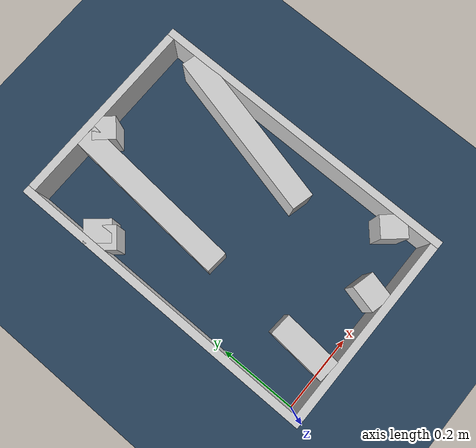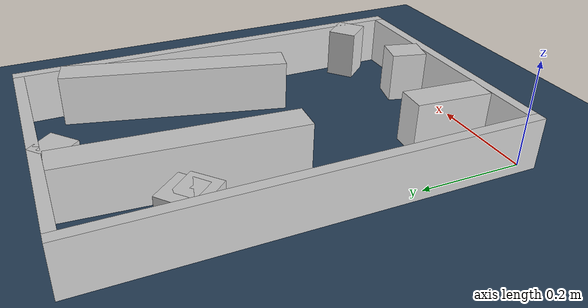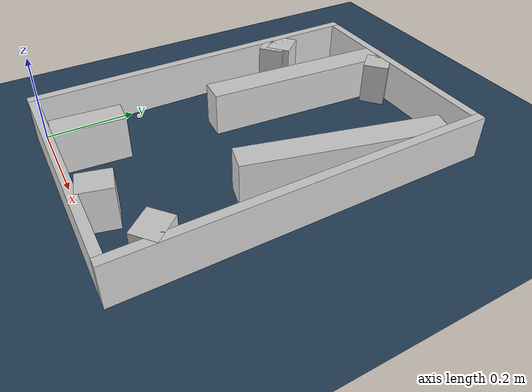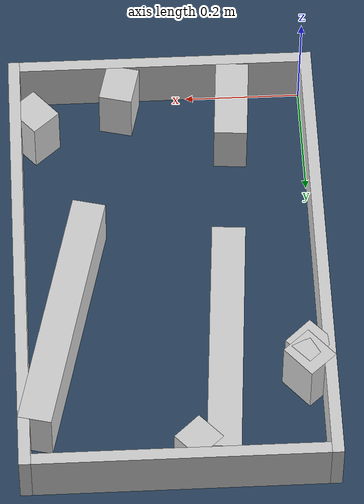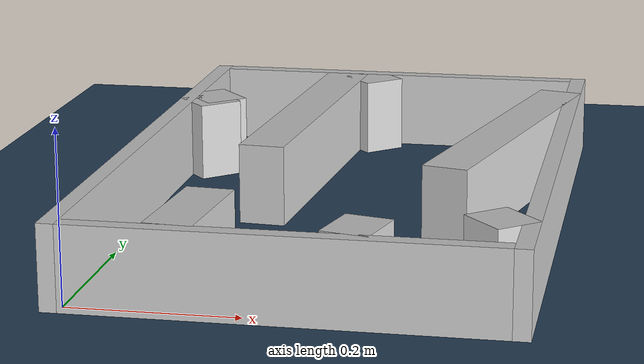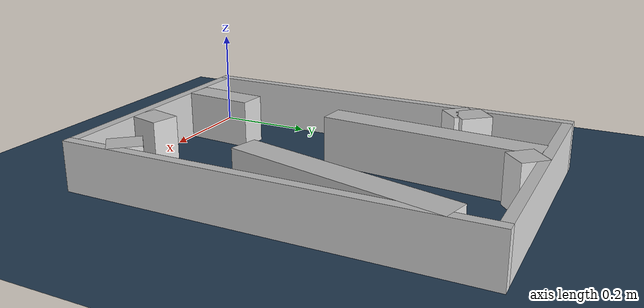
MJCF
<?xml version="1.0" ?>
<mujoco model="generated_real_template">
  <compiler angle="degree"/>
  <option timestep="0.002" integrator="implicitfast" iterations="100" cone="elliptic"/>
  <default>
    <geom density="1"/>
  </default>
  <asset>
    <texture builtin="gradient" height="3072" rgb1="0.3 0.5 0.7" rgb2="0 0 0" type="skybox" width="512"/>
    <texture builtin="checker" height="300" mark="edge" markrgb="0.8 0.8 0.8" name="groundplane" rgb1="0.2 0.3 0.4" rgb2="0.1 0.2 0.3" type="2d" width="300"/>
    <material name="groundplane" reflectance="0.2" texrepeat="5 5" texture="groundplane" texuniform="true"/>
  </asset>
  <worldbody>
    <light dir="0 0 -1" directional="true" pos="0 0 1.5"/>
    <geom name="floor" type="plane" condim="4" friction="0.5 0.005 0.001" material="groundplane" size="0 0 0.05"/>
    <body name="walls">
      <geom name="wall_boundary_left" type="box" condim="4" friction="1.0 0.005 0.0001" rgba="0.8 0.8 0.8 1" pos="-0.010000 0.387500 0.050000" euler="0 0 0.000000" size="0.010000 0.407500 0.050000"/>
      <geom name="wall_boundary_right" type="box" condim="4" friction="1.0 0.005 0.0001" rgba="0.8 0.8 0.8 1" pos="0.500000 0.387500 0.050000" euler="0 0 0.000000" size="0.010000 0.407500 0.050000"/>
      <geom name="wall_boundary_bottom" type="box" condim="4" friction="1.0 0.005 0.0001" rgba="0.8 0.8 0.8 1" pos="0.245000 -0.010000 0.050000" euler="0 0 0.000000" size="0.245000 0.010000 0.050000"/>
      <geom name="wall_boundary_top" type="box" condim="4" friction="1.0 0.005 0.0001" rgba="0.8 0.8 0.8 1" pos="0.245000 0.785000 0.050000" euler="0 0 0.000000" size="0.245000 0.010000 0.050000"/>
      <geom name="wall_inner_1_1" type="box" condim="4" friction="1.0 0.005 0.0001" rgba="0.8 0.8 0.8 1" pos="0.467164 0.087561 0.050000" euler="0 0 130.845393" size="0.032530 0.028500 0.050000"/>
      <geom name="wall_inner_1_2" type="box" condim="4" friction="1.0 0.005 0.0001" rgba="0.8 0.8 0.8 1" pos="0.023220 0.601052 0.050000" euler="0 0 130.845393" size="0.033117 0.028500 0.050000"/>
      <geom name="wall_inner_2_1" type="box" condim="4" friction="1.0 0.005 0.0001" rgba="0.8 0.8 0.8 1" pos="0.317705 0.034082 0.050000" euler="0 0 76.326978" size="0.035076 0.028500 0.050000"/>
      <geom name="wall_inner_2_2" type="box" condim="4" friction="1.0 0.005 0.0001" rgba="0.8 0.8 0.8 1" pos="0.430295 0.496893 0.050000" euler="0 0 76.326978" size="0.220033 0.028500 0.050000"/>
      <geom name="wall_inner_3_1" type="box" condim="4" friction="1.0 0.005 0.0001" rgba="0.8 0.8 0.8 1" pos="0.124171 0.074294 0.050000" euler="0 0 85.871355" size="0.074488 0.028500 0.050000"/>
      <geom name="wall_inner_3_2" type="box" condim="4" friction="1.0 0.005 0.0001" rgba="0.8 0.8 0.8 1" pos="0.159227 0.559941 0.050000" euler="0 0 85.871355" size="0.215619 0.028500 0.050000"/>
      <geom name="wall_inner_4_1" type="box" condim="4" friction="1.0 0.005 0.0001" rgba="0.8 0.8 0.8 1" pos="0.214790 0.754635 0.050000" euler="0 0 -137.651428" size="0.028652 0.028500 0.050000"/>
      <geom name="wall_inner_4_2" type="box" condim="4" friction="1.0 0.005 0.0001" rgba="0.8 0.8 0.8 1" pos="0.021671 0.578610 0.050000" euler="0 0 -137.651428" size="0.029322 0.028500 0.050000"/>
    </body>
  </worldbody>
</mujoco>
